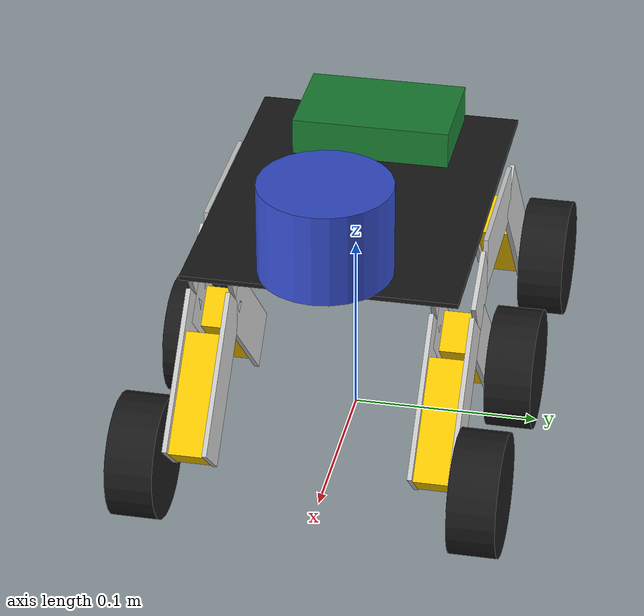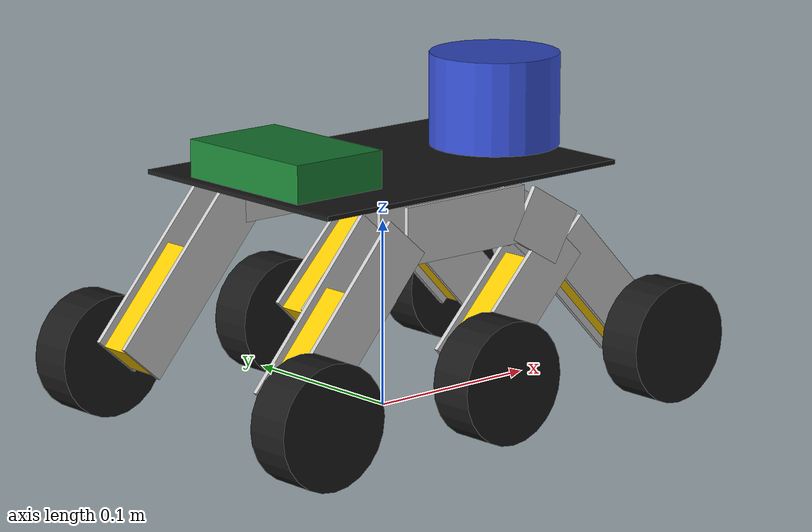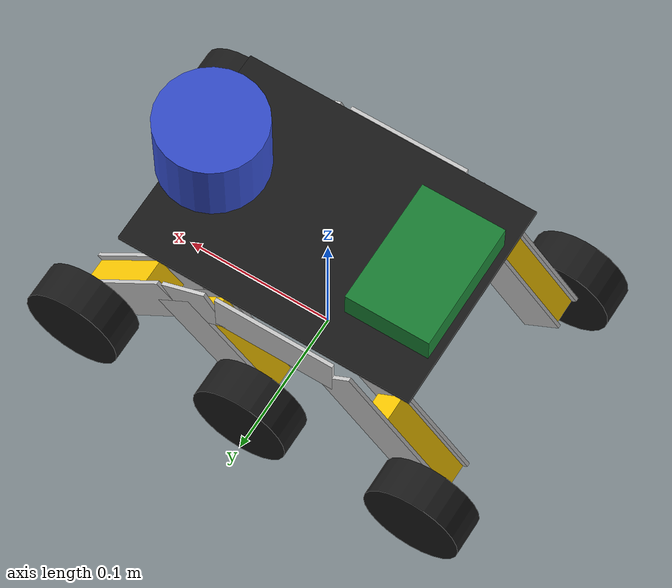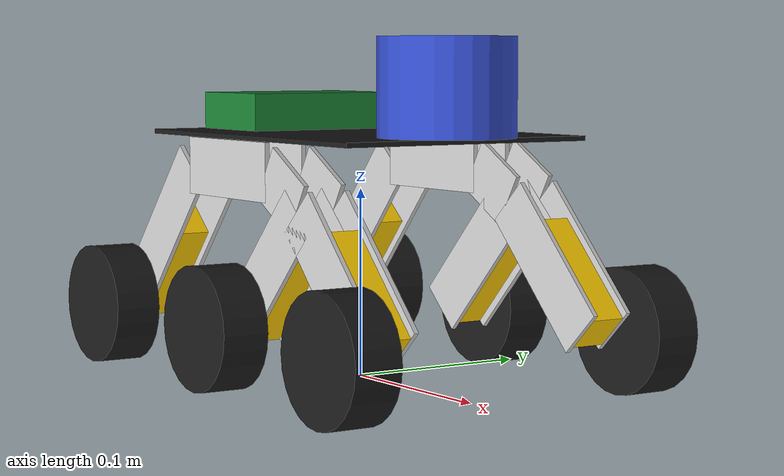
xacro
<?xml version="1.0"?>
<robot name="explorer" xmlns:xacro="http://www.ros.org/wiki/xacro">

  <!-- ===================== MEASURED DIMENSIONS ===================== -->
  <xacro:property name="wheel_r"      value="0.0325"/>
  <xacro:property name="wheel_w"      value="0.025"/>
  <xacro:property name="wheel_y"      value="0.088"/>   <!-- wheel centre, from centre line -->
  <xacro:property name="axle_dx"      value="0.12"/>    <!-- middle axle -> front/rear axle -->

  <xacro:property name="plate_l"      value="0.198"/>
  <xacro:property name="plate_w"      value="0.143"/>
  <xacro:property name="plate_t"      value="0.0025"/>
  <xacro:property name="plate_top_h"  value="0.130"/>   <!-- ground -> plate top -->

  <xacro:property name="pivot_h"      value="0.095"/>   <!-- ground -> bogie bolt -->
  <xacro:property name="pivot_x"      value="-0.06"/>   <!-- derived; toward the bogie end -->
  <!-- 1 = rocker wheel in front (as first drawn); -1 = bogie in front (the real robot).
       Every chassis x-coordinate below is multiplied by fx. -->
  <xacro:property name="bogie_leads"  value="true"/>
  <xacro:property name="fx"           value="${-1 if bogie_leads else 1}"/>

  <xacro:property name="leg_t"        value="0.0025"/>
  <xacro:property name="leg_w"        value="0.03"/>
  <!-- Each motor is sandwiched between an inner and an outer side plate.
       Stack from the wheel inward: wheel | outer plate | motor | inner plate -->
  <xacro:property name="side_y"       value="0.06375"/> <!-- motor centre plane -->
  <xacro:property name="plate_off"    value="0.0105"/>  <!-- motor centre -> each side-plate centre -->

  <!-- Heights relative to base_link (base_link sits at axle height) -->
  <xacro:property name="plate_top_z"  value="${plate_top_h - wheel_r}"/>
  <xacro:property name="pivot_z"      value="${pivot_h - wheel_r}"/>
  <xacro:property name="leg_top_z"    value="${plate_top_z - plate_t - leg_w/2}"/>

  <!-- ===================== ASSUMED VALUES ===================== -->
  <xacro:property name="m_plate"      value="0.105"/>   <!-- acrylic plate + brackets/screws -->
  <xacro:property name="m_rocker"     value="0.070"/>   <!-- 2 side plates + front motor -->
  <xacro:property name="m_bogie"      value="0.105"/>   <!-- 2 L-plates + 2 motors -->
  <xacro:property name="m_wheel"      value="0.030"/>
  <xacro:property name="m_lidar"      value="0.170"/>
  <xacro:property name="m_pi"         value="0.046"/>

  <xacro:property name="motor_l"      value="0.065"/>   <!-- BO dual-shaft motor body -->
  <xacro:property name="motor_wd"     value="0.0185"/>
  <xacro:property name="motor_h"      value="0.022"/>

  <!-- Bogie swing, measured from photos (+/- ~5 deg) -->
  <xacro:property name="bogie_mid_up"   value="${radians(28)}"/>  <!-- middle wheel lifted -->
  <xacro:property name="bogie_outer_up" value="${radians(43)}"/>  <!-- outer (end) wheel lifted -->
  <xacro:property name="wheel_effort" value="0.078"/>
  <xacro:property name="wheel_vel"    value="20.9"/>    <!-- 200 RPM -->

  <xacro:property name="lidar_back"   value="0.02"/>    <!-- scan centre behind front edge -->
  <xacro:property name="lidar_h"      value="0.05"/>    <!-- scan plane above plate top -->
  <xacro:property name="lidar_r"      value="0.035"/>

  <xacro:property name="pi_l"         value="0.085"/>
  <xacro:property name="pi_wd"        value="0.056"/>
  <xacro:property name="pi_h"         value="0.02"/>
  <xacro:property name="pi_margin"    value="0.005"/>

  <xacro:property name="imu_l"        value="0.025"/>   <!-- GY-9250 breakout board -->
  <xacro:property name="imu_w"        value="0.015"/>
  <xacro:property name="imu_h"        value="0.003"/>

  <!-- ===================== MATERIALS ===================== -->
  <material name="black">  <color rgba="0.1 0.1 0.1 1"/></material>
  <material name="grey">   <color rgba="0.8 0.8 0.8 1"/></material>
  <material name="yellow"> <color rgba="1.0 0.8 0.0 1"/></material>
  <material name="blue">   <color rgba="0.2 0.3 0.8 1"/></material>
  <material name="green">  <color rgba="0.1 0.5 0.2 1"/></material>

  <!-- ===================== INERTIA MACROS ===================== -->
  <xacro:macro name="box_inertial" params="m x y z *origin">
    <inertial>
      <xacro:insert_block name="origin"/>
      <mass value="${m}"/>
      <inertia ixx="${m*(y*y+z*z)/12}" ixy="0" ixz="0"
               iyy="${m*(x*x+z*z)/12}" iyz="0"
               izz="${m*(x*x+y*y)/12}"/>
    </inertial>
  </xacro:macro>

  <!-- Cylinder whose axis is along link Y (wheels) -->
  <xacro:macro name="wheel_inertial" params="m r h">
    <inertial>
      <origin xyz="0 0 0" rpy="0 0 0"/>
      <mass value="${m}"/>
      <inertia ixx="${m*(3*r*r+h*h)/12}" ixy="0" ixz="0"
               iyy="${m*r*r/2}" iyz="0"
               izz="${m*(3*r*r+h*h)/12}"/>
    </inertial>
  </xacro:macro>

  <!-- Cylinder whose axis is along link Z -->
  <xacro:macro name="cyl_inertial" params="m r h *origin">
    <inertial>
      <xacro:insert_block name="origin"/>
      <mass value="${m}"/>
      <inertia ixx="${m*(3*r*r+h*h)/12}" ixy="0" ixz="0"
               iyy="${m*(3*r*r+h*h)/12}" iyz="0"
               izz="${m*r*r/2}"/>
    </inertial>
  </xacro:macro>

  <!-- ===================== GEOMETRY MACROS ===================== -->
  <!-- Flat bar in the XZ plane from (x1,z1) to (x2,z2) at lateral offset y -->
  <xacro:macro name="segment" params="x1 z1 x2 z2 y">
    <visual>
      <origin xyz="${(x1+x2)/2} ${y} ${(z1+z2)/2}"
              rpy="0 ${atan2(-(z2-z1), x2-x1)} 0"/>
      <geometry>
        <box size="${sqrt((x2-x1)**2 + (z2-z1)**2)} ${leg_t} ${leg_w}"/>
      </geometry>
      <material name="grey"/>
    </visual>
  </xacro:macro>

  <!-- Same bar drawn twice: inner and outer side plate -->
  <xacro:macro name="plate_pair" params="x1 z1 x2 z2">
    <xacro:segment x1="${x1}" z1="${z1}" x2="${x2}" z2="${z2}" y="${plate_off}"/>
    <xacro:segment x1="${x1}" z1="${z1}" x2="${x2}" z2="${z2}" y="${-plate_off}"/>
  </xacro:macro>

  <!-- BO motor lying along the leg: starts at the axle (ax,az), points toward (tx,tz) -->
  <xacro:macro name="bo_motor" params="ax az tx tz y">
    <xacro:property name="ml" value="${sqrt((tx-ax)**2 + (tz-az)**2)}"/>
    <visual>
      <origin xyz="${ax + (tx-ax)/ml*motor_l/2} ${y} ${az + (tz-az)/ml*motor_l/2}"
              rpy="0 ${atan2(-(tz-az), tx-ax)} 0"/>
      <geometry><box size="${motor_l} ${motor_wd} ${motor_h}"/></geometry>
      <material name="yellow"/>
    </visual>
  </xacro:macro>

  <!-- ===================== WHEEL ===================== -->
  <xacro:macro name="wheel" params="name parent x y z">
    <link name="${name}_wheel">
      <visual>
        <origin xyz="0 0 0" rpy="${pi/2} 0 0"/>
        <geometry><cylinder radius="${wheel_r}" length="${wheel_w}"/></geometry>
        <material name="black"/>
      </visual>
      <collision>
        <origin xyz="0 0 0" rpy="${pi/2} 0 0"/>
        <geometry><cylinder radius="${wheel_r}" length="${wheel_w}"/></geometry>
      </collision>
      <xacro:wheel_inertial m="${m_wheel}" r="${wheel_r}" h="${wheel_w}"/>
    </link>
    <joint name="${name}_wheel_joint" type="continuous">
      <parent link="${parent}"/>
      <child link="${name}_wheel"/>
      <origin xyz="${x} ${y} ${z}" rpy="0 0 0"/>
      <axis xyz="0 1 0"/>
      <limit effort="${wheel_effort}" velocity="${wheel_vel}"/>
      <dynamics damping="0.01" friction="0.0"/>
    </joint>
  </xacro:macro>

  <!-- ===================== ONE SIDE: rocker + bogie + 3 wheels ===================== -->
  <!-- Rocker bend points (base_link XZ) -->
  <xacro:property name="rk_bx" value="-0.03"/>   <!-- rear bend -->
  <xacro:property name="rk_fx" value="0.05"/>    <!-- front bend -->

  <xacro:macro name="side" params="side reflect">

    <!-- Rocker: fixed side plate (image 3). Carries the rocker-end wheel + bogie bolt -->
    <link name="${side}_rocker">
      <xacro:plate_pair x1="${fx*pivot_x}" z1="${pivot_z}" x2="${fx*rk_bx}" z2="${leg_top_z}"/>
      <xacro:plate_pair x1="${fx*rk_bx}"   z1="${leg_top_z}" x2="${fx*rk_fx}" z2="${leg_top_z}"/>
      <xacro:plate_pair x1="${fx*rk_fx}"   z1="${leg_top_z}" x2="${fx*axle_dx}" z2="0"/>
      <xacro:bo_motor ax="${fx*axle_dx}" az="0" tx="${fx*rk_fx}" tz="${leg_top_z}" y="0"/>
      <xacro:box_inertial m="${m_rocker}" x="0.2" y="0.024" z="0.1">
        <origin xyz="${fx*0.03} 0 0.045" rpy="0 0 0"/>
      </xacro:box_inertial>
    </link>
    <joint name="${side}_rocker_joint" type="fixed">
      <parent link="base_link"/>
      <child link="${side}_rocker"/>
      <origin xyz="0 ${reflect*side_y} 0" rpy="0 0 0"/>
    </joint>

    <!-- Bogie: L-plate (image 2), swings freely on the bolt -->
    <link name="${side}_bogie">
      <xacro:plate_pair x1="0" z1="0" x2="${-fx*pivot_x}" z2="${-pivot_z}"/>
      <xacro:plate_pair x1="0" z1="0" x2="${fx*pivot_x}"  z2="${-pivot_z}"/>
      <xacro:bo_motor ax="${-fx*pivot_x}" az="${-pivot_z}" tx="0" tz="0" y="0"/>
      <xacro:bo_motor ax="${fx*pivot_x}"  az="${-pivot_z}" tx="0" tz="0" y="0"/>
      <xacro:box_inertial m="${m_bogie}" x="0.14" y="0.024" z="0.07">
        <origin xyz="0 0 ${-pivot_z/2}" rpy="0 0 0"/>
      </xacro:box_inertial>
    </link>
    <joint name="${side}_bogie_joint" type="revolute">
      <parent link="${side}_rocker"/>
      <child link="${side}_bogie"/>
      <origin xyz="${fx*pivot_x} 0 ${pivot_z}" rpy="0 0 0"/>
      <axis xyz="0 1 0"/>
      <!-- Rotation about +y lifts whichever wheel is at -x, so mirroring swaps the limits -->
      <limit lower="${-bogie_mid_up if fx > 0 else -bogie_outer_up}"
             upper="${bogie_outer_up if fx > 0 else bogie_mid_up}" effort="10" velocity="10"/>
      <dynamics damping="0.05" friction="0.0"/>
    </joint>

    <!-- Wheels, named by where they end up (front = +x) -->
    <xacro:wheel name="${side}_${'front' if fx > 0 else 'rear'}"  parent="${side}_rocker"
                 x="${fx*axle_dx}"  y="${reflect*(wheel_y - side_y)}" z="0"/>
    <xacro:wheel name="${side}_middle" parent="${side}_bogie"
                 x="${-fx*pivot_x}" y="${reflect*(wheel_y - side_y)}"  z="${-pivot_z}"/>
    <xacro:wheel name="${side}_${'rear' if fx > 0 else 'front'}"   parent="${side}_bogie"
                 x="${fx*pivot_x}"  y="${reflect*(wheel_y - side_y)}"  z="${-pivot_z}"/>
  </xacro:macro>

  <!-- ===================== ROBOT TREE ===================== -->
  <!-- Ground projection of the robot centre (under the middle axle) -->
  <link name="base_footprint"/>

  <!-- base_link: centre of the robot at axle height. Holds the top plate. -->
  <link name="base_link">
    <visual>
      <origin xyz="0 0 ${plate_top_z - plate_t/2}" rpy="0 0 0"/>
      <geometry><box size="${plate_l} ${plate_w} ${plate_t}"/></geometry>
      <material name="black"/>
    </visual>
    <collision>
      <origin xyz="0 0 ${plate_top_z - plate_t/2}" rpy="0 0 0"/>
      <geometry><box size="${plate_l} ${plate_w} ${plate_t}"/></geometry>
    </collision>
    <xacro:box_inertial m="${m_plate}" x="${plate_l}" y="${plate_w}" z="${plate_t}">
      <origin xyz="0 0 ${plate_top_z - plate_t/2}" rpy="0 0 0"/>
    </xacro:box_inertial>
  </link>
  <joint name="base_footprint_joint" type="fixed">
    <parent link="base_footprint"/>
    <child link="base_link"/>
    <origin xyz="0 0 ${wheel_r}" rpy="0 0 0"/>
  </joint>

  <xacro:side side="left"  reflect="1"/>
  <xacro:side side="right" reflect="-1"/>

  <!-- LiDAR: body sits on the plate; laser_frame is the scan plane -->
  <link name="lidar_link">
    <visual>
      <origin xyz="0 0 ${lidar_h/2}" rpy="0 0 0"/>
      <geometry><cylinder radius="${lidar_r}" length="${lidar_h}"/></geometry>
      <material name="blue"/>
    </visual>
    <collision>
      <origin xyz="0 0 ${lidar_h/2}" rpy="0 0 0"/>
      <geometry><cylinder radius="${lidar_r}" length="${lidar_h}"/></geometry>
    </collision>
    <xacro:cyl_inertial m="${m_lidar}" r="${lidar_r}" h="${lidar_h}">
      <origin xyz="0 0 ${lidar_h/2}" rpy="0 0 0"/>
    </xacro:cyl_inertial>
  </link>
  <joint name="lidar_joint" type="fixed">
    <parent link="base_link"/>
    <child link="lidar_link"/>
    <origin xyz="${plate_l/2 - lidar_back} 0 ${plate_top_z}" rpy="0 0 0"/>
  </joint>

  <link name="laser_frame"/>
  <joint name="laser_joint" type="fixed">
    <parent link="lidar_link"/>
    <child link="laser_frame"/>
    <origin xyz="0 0 ${lidar_h}" rpy="0 0 0"/>
  </joint>

  <!-- Raspberry Pi at the rear edge, long side across the robot -->
  <link name="pi_link">
    <visual>
      <origin xyz="0 0 ${pi_h/2}" rpy="0 0 0"/>
      <geometry><box size="${pi_wd} ${pi_l} ${pi_h}"/></geometry>
      <material name="green"/>
    </visual>
    <collision>
      <origin xyz="0 0 ${pi_h/2}" rpy="0 0 0"/>
      <geometry><box size="${pi_wd} ${pi_l} ${pi_h}"/></geometry>
    </collision>
    <xacro:box_inertial m="${m_pi}" x="${pi_wd}" y="${pi_l}" z="${pi_h}">
      <origin xyz="0 0 ${pi_h/2}" rpy="0 0 0"/>
    </xacro:box_inertial>
  </link>
  <joint name="pi_joint" type="fixed">
    <parent link="base_link"/>
    <child link="pi_link"/>
    <origin xyz="${-plate_l/2 + pi_margin + pi_wd/2} 0 ${plate_top_z}" rpy="0 0 0"/>
  </joint>

  <link name="imu_link">
    <visual>
      <origin xyz="0 0 ${imu_h/2}" rpy="0 0 0"/>
      <geometry><box size="${imu_l} ${imu_w} ${imu_h}"/></geometry>
      <material name="blue"/>
    </visual>
  </link>
  <joint name="imu_joint" type="fixed">
    <parent link="base_link"/>
    <child link="imu_link"/>
    <origin xyz="0 0 ${plate_top_z - plate_t}" rpy="${pi} 0 ${pi/2}"/>
  </joint>

  <!-- Gazebo Harmonic: drive, joint states, LiDAR, IMU -->
  <xacro:include filename="$(find explorer_description)/urdf/explorer_gazebo.xacro"/>

</robot>
